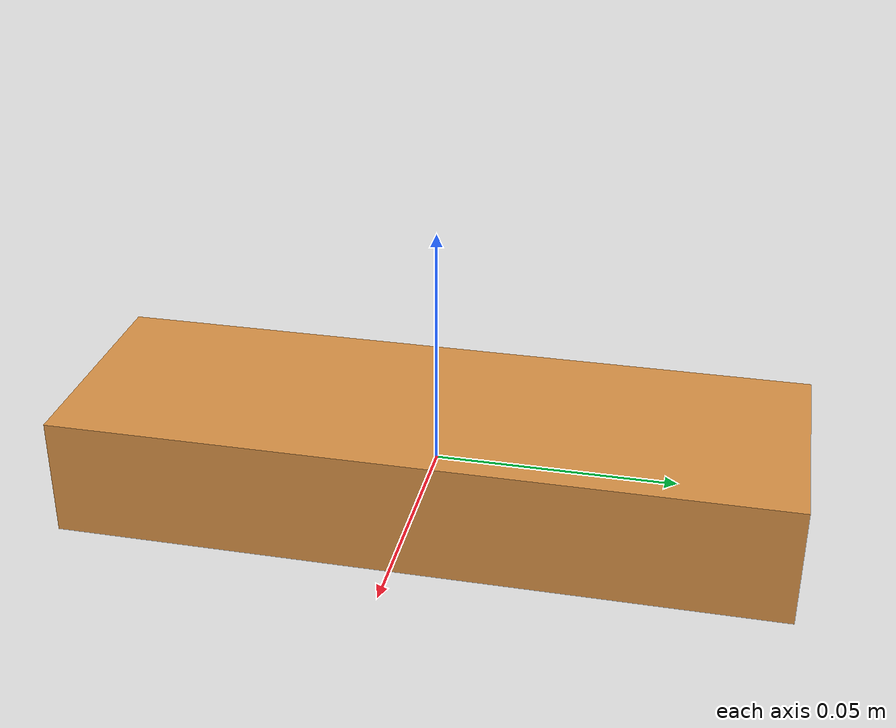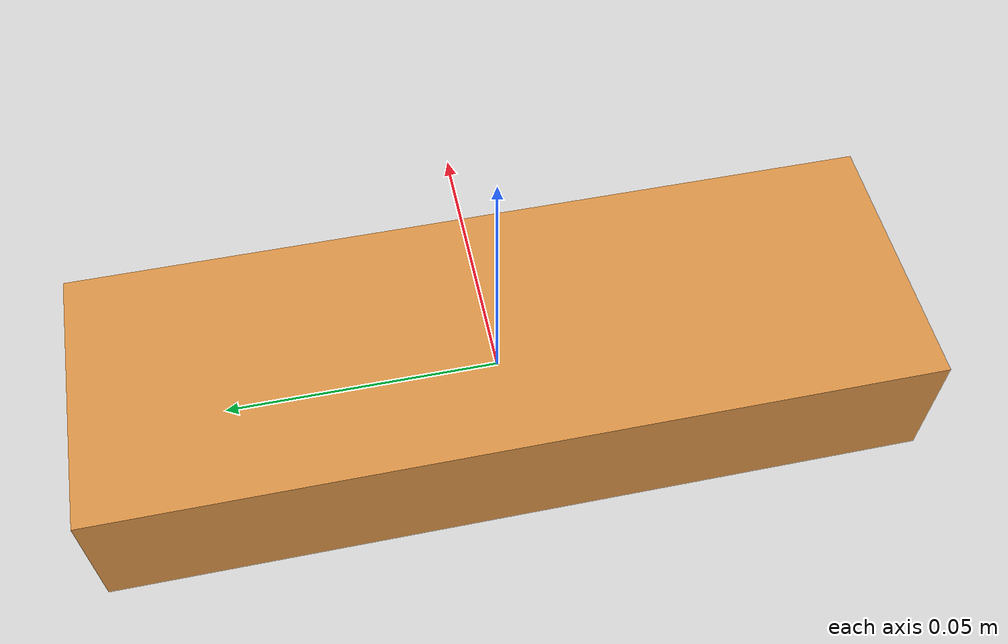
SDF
<?xml version="1.0"?>
<sdf version="1.9">
  <model name="bread3">
    <static>false</static>
    <link name="bread3_link">
      <inertial>
        <mass>0.030000</mass>
        <inertia>
          <ixx>0.000030000</ixx>
          <iyy>0.000030000</iyy>
          <izz>0.000030000</izz>
          <ixy>0</ixy>
          <ixz>0</ixz>
          <iyz>0</iyz>
        </inertia>
      </inertial>
      <visual name="bread3_visual">
        <geometry>
          <mesh>
            <uri>meshes/bread3.obj</uri>
          </mesh>
        </geometry>
        <material>
          <ambient>0.215000 0.145000 0.070000 1.000000</ambient>
          <diffuse>0.860000 0.580000 0.280000 1.000000</diffuse>
          <specular>0.120000 0.120000 0.120000 1.000000</specular>
        </material>
      </visual>
      <collision name="bread3_bread3_collision">
        <pose>0.000000000 0.000000000 0.000000000 0 0 0</pose>
        <geometry>
          <box>
            <size>0.050000001 0.150000006 0.025000000</size>
          </box>
        </geometry>
        <surface>
          <friction>
            <ode>
              <mu>1.0</mu>
              <mu2>1.0</mu2>
            </ode>
          </friction>
        </surface>
      </collision>
    </link>
  </model>
</sdf>
